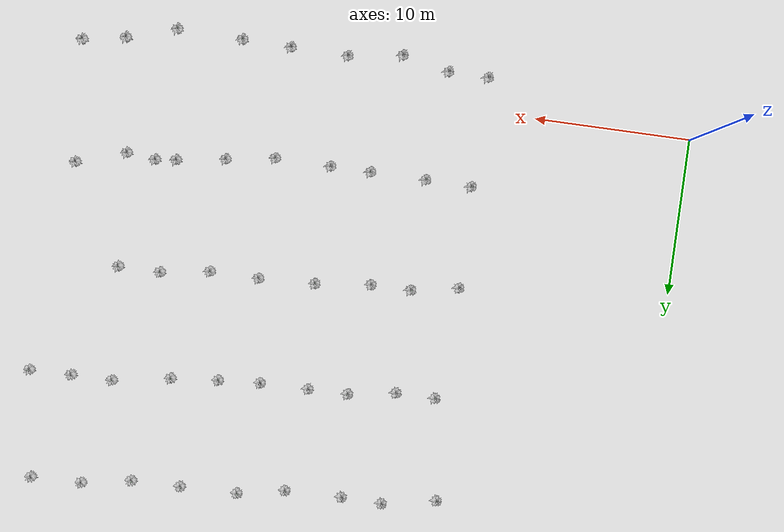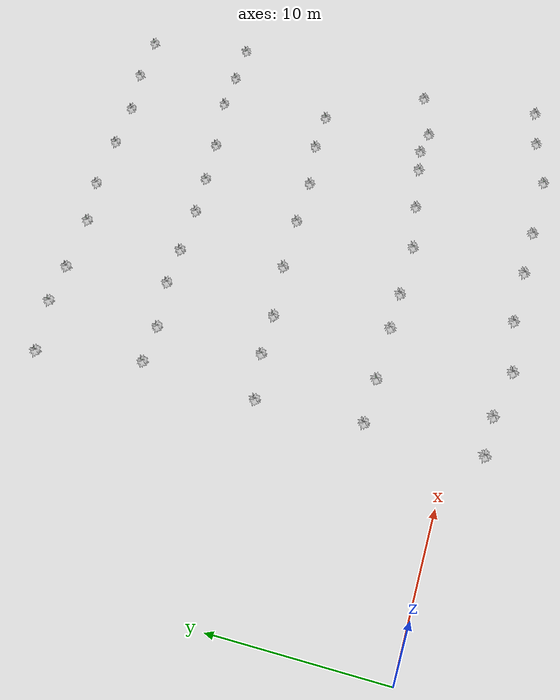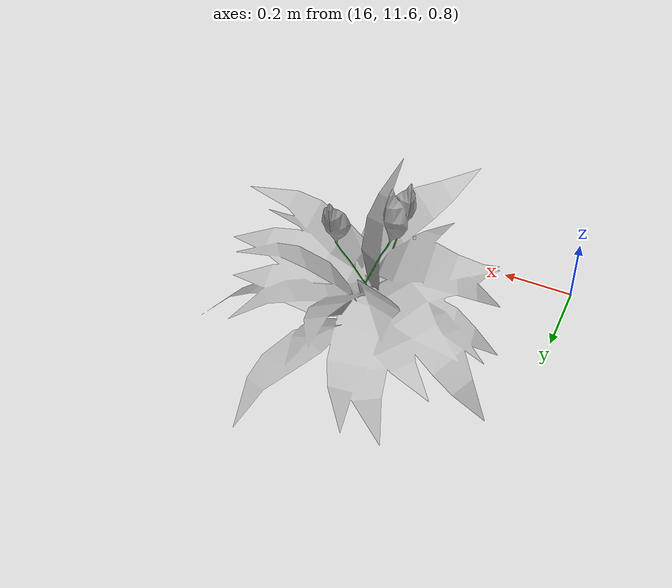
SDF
<sdf version="1.3">
 <world name="default">
  <scene>
   <grid>0</grid>
   <shadows>1</shadows>
   <ambient>0.200000 0.200000 0.200000 1.000000</ambient>
   <background>0.900000 0.900000 0.900000 1.000000</background>
  </scene>
  <light name="sun" type="directional">
   <pose>0.000000 0.000000 10.000000 0.000000 0.000000 0.000000</pose>
   <diffuse>0.800000 0.800000 0.800000 1.000000</diffuse>
   <specular>0.100000 0.100000 0.100000 1.000000</specular>
   <attenuation>
    <range>1000.000000</range>
    <constant>0.900000</constant>
    <linear>0.010000</linear>
    <quadratic>0.001000</quadratic>
   </attenuation>
   <direction>-0.500000 0.500000 -1.000000</direction>
  </light>
  <physics type="ode">
   <update_rate>1000.000000</update_rate>
   <gravity>0.000000 0.000000 -9.800000</gravity>
  </physics>
  <model name="Spathaphylum">
   <pose>38 26.4824 2.69953 0 -0 0</pose>
   <static>1</static>
   <link name="link">
    <inertial>
     <mass>10</mass>
     <inertia><ixx>1</ixx><ixy>0</ixy><ixz>0</ixz><iyy>1</iyy><iyz>0</iyz><izz>1</izz></inertia>
    </inertial>
    <visual name="visual">
     <geometry><mesh><uri>model://spathaphylum/meshes/Spathaphylum.dae</uri></mesh></geometry>
    </visual>
    <velocity_decay><linear>0</linear><angular>0</angular></velocity_decay>
   </link>
  </model>
  <model name="Spathaphylum_0">
   <pose>35 26.4967 2.37261 0 -0 0</pose>
   <static>1</static>
   <link name="link">
    <inertial>
     <mass>10</mass>
     <inertia><ixx>1</ixx><ixy>0</ixy><ixz>0</ixz><iyy>1</iyy><iyz>0</iyz><izz>1</izz></inertia>
    </inertial>
    <visual name="visual">
     <geometry><mesh><uri>model://spathaphylum/meshes/Spathaphylum.dae</uri></mesh></geometry>
    </visual>
    <velocity_decay><linear>0</linear><angular>0</angular></velocity_decay>
   </link>
  </model>
  <model name="Spathaphylum_1">
   <pose>32 26 2.17713 0 -0 0</pose>
   <static>1</static>
   <link name="link">
    <inertial>
     <mass>10</mass>
     <inertia><ixx>1</ixx><ixy>0</ixy><ixz>0</ixz><iyy>1</iyy><iyz>0</iyz><izz>1</izz></inertia>
    </inertial>
    <visual name="visual">
     <geometry><mesh><uri>model://spathaphylum/meshes/Spathaphylum.dae</uri></mesh></geometry>
    </visual>
    <velocity_decay><linear>0</linear><angular>0</angular></velocity_decay>
   </link>
  </model>
  <model name="Spathaphylum_2">
   <pose>29 26 1.9598 0 -0 0</pose>
   <static>1</static>
   <link name="link">
    <inertial>
     <mass>10</mass>
     <inertia><ixx>1</ixx><ixy>0</ixy><ixz>0</ixz><iyy>1</iyy><iyz>0</iyz><izz>1</izz></inertia>
    </inertial>
    <visual name="visual">
     <geometry><mesh><uri>model://spathaphylum/meshes/Spathaphylum.dae</uri></mesh></geometry>
    </visual>
    <velocity_decay><linear>0</linear><angular>0</angular></velocity_decay>
   </link>
  </model>
  <model name="Spathaphylum_3">
   <pose>25.4868 26 1.70026 0 -0 0</pose>
   <static>1</static>
   <link name="link">
    <inertial>
     <mass>10</mass>
     <inertia><ixx>1</ixx><ixy>0</ixy><ixz>0</ixz><iyy>1</iyy><iyz>0</iyz><izz>1</izz></inertia>
    </inertial>
    <visual name="visual">
     <geometry><mesh><uri>model://spathaphylum/meshes/Spathaphylum.dae</uri></mesh></geometry>
    </visual>
    <velocity_decay><linear>0</linear><angular>0</angular></velocity_decay>
   </link>
  </model>
  <model name="Spathaphylum_4">
   <pose>22.5566 25.4676 1.50789 0 -0 0</pose>
   <static>1</static>
   <link name="link">
    <inertial>
     <mass>10</mass>
     <inertia><ixx>1</ixx><ixy>0</ixy><ixz>0</ixz><iyy>1</iyy><iyz>0</iyz><izz>1</izz></inertia>
    </inertial>
    <visual name="visual">
     <geometry><mesh><uri>model://spathaphylum/meshes/Spathaphylum.dae</uri></mesh></geometry>
    </visual>
    <velocity_decay><linear>0</linear><angular>0</angular></velocity_decay>
   </link>
  </model>
  <model name="Spathaphylum_5">
   <pose>19 25.484 1.163 0 -0 0</pose>
   <static>1</static>
   <link name="link">
    <inertial>
     <mass>10</mass>
     <inertia><ixx>1</ixx><ixy>0</ixy><ixz>0</ixz><iyy>1</iyy><iyz>0</iyz><izz>1</izz></inertia>
    </inertial>
    <visual name="visual">
     <geometry><mesh><uri>model://spathaphylum/meshes/Spathaphylum.dae</uri></mesh></geometry>
    </visual>
    <velocity_decay><linear>0</linear><angular>0</angular></velocity_decay>
   </link>
  </model>
  <model name="Spathaphylum_6">
   <pose>16.4478 25.5812 0.930925 0 -0 0</pose>
   <static>1</static>
   <link name="link">
    <inertial>
     <mass>10</mass>
     <inertia><ixx>1</ixx><ixy>0</ixy><ixz>0</ixz><iyy>1</iyy><iyz>0</iyz><izz>1</izz></inertia>
    </inertial>
    <visual name="visual">
     <geometry><mesh><uri>model://spathaphylum/meshes/Spathaphylum.dae</uri></mesh></geometry>
    </visual>
    <velocity_decay><linear>0</linear><angular>0</angular></velocity_decay>
   </link>
  </model>
  <model name="Spathaphylum_7">
   <pose>13 25 0.691737 0 -0 0</pose>
   <static>1</static>
   <link name="link">
    <inertial>
     <mass>10</mass>
     <inertia><ixx>1</ixx><ixy>0</ixy><ixz>0</ixz><iyy>1</iyy><iyz>0</iyz><izz>1</izz></inertia>
    </inertial>
    <visual name="visual">
     <geometry><mesh><uri>model://spathaphylum/meshes/Spathaphylum.dae</uri></mesh></geometry>
    </visual>
    <velocity_decay><linear>0</linear><angular>0</angular></velocity_decay>
   </link>
  </model>
  <model name="Spathaphylum_8">
   <pose>14 18.5646 0.780323 0 -0 0</pose>
   <static>1</static>
   <link name="link">
    <inertial>
     <mass>10</mass>
     <inertia><ixx>1</ixx><ixy>0</ixy><ixz>0</ixz><iyy>1</iyy><iyz>0</iyz><izz>1</izz></inertia>
    </inertial>
    <visual name="visual">
     <geometry><mesh><uri>model://spathaphylum/meshes/Spathaphylum.dae</uri></mesh></geometry>
    </visual>
    <velocity_decay><linear>0</linear><angular>0</angular></velocity_decay>
   </link>
  </model>
  <model name="Spathaphylum_9">
   <pose>16.4951 18.5506 0.896067 0 -0 0</pose>
   <static>1</static>
   <link name="link">
    <inertial>
     <mass>10</mass>
     <inertia><ixx>1</ixx><ixy>0</ixy><ixz>0</ixz><iyy>1</iyy><iyz>0</iyz><izz>1</izz></inertia>
    </inertial>
    <visual name="visual">
     <geometry><mesh><uri>model://spathaphylum/meshes/Spathaphylum.dae</uri></mesh></geometry>
    </visual>
    <velocity_decay><linear>0</linear><angular>0</angular></velocity_decay>
   </link>
  </model>
  <model name="Spathaphylum_10">
   <pose>19.5087 19 1.23942 0 -0 0</pose>
   <static>1</static>
   <link name="link">
    <inertial>
     <mass>10</mass>
     <inertia><ixx>1</ixx><ixy>0</ixy><ixz>0</ixz><iyy>1</iyy><iyz>0</iyz><izz>1</izz></inertia>
    </inertial>
    <visual name="visual">
     <geometry><mesh><uri>model://spathaphylum/meshes/Spathaphylum.dae</uri></mesh></geometry>
    </visual>
    <velocity_decay><linear>0</linear><angular>0</angular></velocity_decay>
   </link>
  </model>
  <model name="Spathaphylum_11">
   <pose>22 19 1.42672 0 -0 0</pose>
   <static>1</static>
   <link name="link">
    <inertial>
     <mass>10</mass>
     <inertia><ixx>1</ixx><ixy>0</ixy><ixz>0</ixz><iyy>1</iyy><iyz>0</iyz><izz>1</izz></inertia>
    </inertial>
    <visual name="visual">
     <geometry><mesh><uri>model://spathaphylum/meshes/Spathaphylum.dae</uri></mesh></geometry>
    </visual>
    <velocity_decay><linear>0</linear><angular>0</angular></velocity_decay>
   </link>
  </model>
  <model name="Spathaphylum_12">
   <pose>25 19 1.72219 0 -0 0</pose>
   <static>1</static>
   <link name="link">
    <inertial>
     <mass>10</mass>
     <inertia><ixx>1</ixx><ixy>0</ixy><ixz>0</ixz><iyy>1</iyy><iyz>0</iyz><izz>1</izz></inertia>
    </inertial>
    <visual name="visual">
     <geometry><mesh><uri>model://spathaphylum/meshes/Spathaphylum.dae</uri></mesh></geometry>
    </visual>
    <velocity_decay><linear>0</linear><angular>0</angular></velocity_decay>
   </link>
  </model>
  <model name="Spathaphylum_13">
   <pose>27.5803 19.1679 1.94251 0 -0 0</pose>
   <static>1</static>
   <link name="link">
    <inertial>
     <mass>10</mass>
     <inertia><ixx>1</ixx><ixy>0</ixy><ixz>0</ixz><iyy>1</iyy><iyz>0</iyz><izz>1</izz></inertia>
    </inertial>
    <visual name="visual">
     <geometry><mesh><uri>model://spathaphylum/meshes/Spathaphylum.dae</uri></mesh></geometry>
    </visual>
    <velocity_decay><linear>0</linear><angular>0</angular></velocity_decay>
   </link>
  </model>
  <model name="Spathaphylum_14">
   <pose>30.4794 19.4287 2.0789 0 -0 0</pose>
   <static>1</static>
   <link name="link">
    <inertial>
     <mass>10</mass>
     <inertia><ixx>1</ixx><ixy>0</ixy><ixz>0</ixz><iyy>1</iyy><iyz>0</iyz><izz>1</izz></inertia>
    </inertial>
    <visual name="visual">
     <geometry><mesh><uri>model://spathaphylum/meshes/Spathaphylum.dae</uri></mesh></geometry>
    </visual>
    <velocity_decay><linear>0</linear><angular>0</angular></velocity_decay>
   </link>
  </model>
  <model name="Spathaphylum_15">
   <pose>34 20 2.3524 0 -0 0</pose>
   <static>1</static>
   <link name="link">
    <inertial>
     <mass>10</mass>
     <inertia><ixx>1</ixx><ixy>0</ixy><ixz>0</ixz><iyy>1</iyy><iyz>0</iyz><izz>1</izz></inertia>
    </inertial>
    <visual name="visual">
     <geometry><mesh><uri>model://spathaphylum/meshes/Spathaphylum.dae</uri></mesh></geometry>
    </visual>
    <velocity_decay><linear>0</linear><angular>0</angular></velocity_decay>
   </link>
  </model>
  <model name="Spathaphylum_16">
   <pose>36.508 20 2.42581 0 -0 0</pose>
   <static>1</static>
   <link name="link">
    <inertial>
     <mass>10</mass>
     <inertia><ixx>1</ixx><ixy>0</ixy><ixz>0</ixz><iyy>1</iyy><iyz>0</iyz><izz>1</izz></inertia>
    </inertial>
    <visual name="visual">
     <geometry><mesh><uri>model://spathaphylum/meshes/Spathaphylum.dae</uri></mesh></geometry>
    </visual>
    <velocity_decay><linear>0</linear><angular>0</angular></velocity_decay>
   </link>
  </model>
  <model name="Spathaphylum_17">
   <pose>39 20 2.69252 0 -0 0</pose>
   <static>1</static>
   <link name="link">
    <inertial>
     <mass>10</mass>
     <inertia><ixx>1</ixx><ixy>0</ixy><ixz>0</ixz><iyy>1</iyy><iyz>0</iyz><izz>1</izz></inertia>
    </inertial>
    <visual name="visual">
     <geometry><mesh><uri>model://spathaphylum/meshes/Spathaphylum.dae</uri></mesh></geometry>
    </visual>
    <velocity_decay><linear>0</linear><angular>0</angular></velocity_decay>
   </link>
  </model>
  <model name="Spathaphylum_18">
   <pose>33.1829 6.18657 2.59269 0 -0 0</pose>
   <static>1</static>
   <link name="link">
    <inertial>
     <mass>10</mass>
     <inertia><ixx>1</ixx><ixy>0</ixy><ixz>0</ixz><iyy>1</iyy><iyz>0</iyz><izz>1</izz></inertia>
    </inertial>
    <visual name="visual">
     <geometry><mesh><uri>model://spathaphylum/meshes/Spathaphylum.dae</uri></mesh></geometry>
    </visual>
    <velocity_decay><linear>0</linear><angular>0</angular></velocity_decay>
   </link>
  </model>
  <model name="Spathaphylum_19">
   <pose>34.5484 12.9884 2.4536 0 -0 0</pose>
   <static>1</static>
   <link name="link">
    <inertial>
     <mass>10</mass>
     <inertia><ixx>1</ixx><ixy>0</ixy><ixz>0</ixz><iyy>1</iyy><iyz>0</iyz><izz>1</izz></inertia>
    </inertial>
    <visual name="visual">
     <geometry><mesh><uri>model://spathaphylum/meshes/Spathaphylum.dae</uri></mesh></geometry>
    </visual>
    <velocity_decay><linear>0</linear><angular>0</angular></velocity_decay>
   </link>
  </model>
  <model name="Spathaphylum_20">
   <pose>32 13 2.25553 0 -0 0</pose>
   <static>1</static>
   <link name="link">
    <inertial>
     <mass>10</mass>
     <inertia><ixx>1</ixx><ixy>0</ixy><ixz>0</ixz><iyy>1</iyy><iyz>0</iyz><izz>1</izz></inertia>
    </inertial>
    <visual name="visual">
     <geometry><mesh><uri>model://spathaphylum/meshes/Spathaphylum.dae</uri></mesh></geometry>
    </visual>
    <velocity_decay><linear>0</linear><angular>0</angular></velocity_decay>
   </link>
  </model>
  <model name="Spathaphylum_21">
   <pose>29 12.5448 2.00728 0 -0 0</pose>
   <static>1</static>
   <link name="link">
    <inertial>
     <mass>10</mass>
     <inertia><ixx>1</ixx><ixy>0</ixy><ixz>0</ixz><iyy>1</iyy><iyz>0</iyz><izz>1</izz></inertia>
    </inertial>
    <visual name="visual">
     <geometry><mesh><uri>model://spathaphylum/meshes/Spathaphylum.dae</uri></mesh></geometry>
    </visual>
    <velocity_decay><linear>0</linear><angular>0</angular></velocity_decay>
   </link>
  </model>
  <model name="Spathaphylum_22">
   <pose>26 12.5617 1.72037 0 -0 0</pose>
   <static>1</static>
   <link name="link">
    <inertial>
     <mass>10</mass>
     <inertia><ixx>1</ixx><ixy>0</ixy><ixz>0</ixz><iyy>1</iyy><iyz>0</iyz><izz>1</izz></inertia>
    </inertial>
    <visual name="visual">
     <geometry><mesh><uri>model://spathaphylum/meshes/Spathaphylum.dae</uri></mesh></geometry>
    </visual>
    <velocity_decay><linear>0</linear><angular>0</angular></velocity_decay>
   </link>
  </model>
  <model name="Spathaphylum_23">
   <pose>22.4889 12.4105 1.46787 0 -0 0</pose>
   <static>1</static>
   <link name="link">
    <inertial>
     <mass>10</mass>
     <inertia><ixx>1</ixx><ixy>0</ixy><ixz>0</ixz><iyy>1</iyy><iyz>0</iyz><izz>1</izz></inertia>
    </inertial>
    <visual name="visual">
     <geometry><mesh><uri>model://spathaphylum/meshes/Spathaphylum.dae</uri></mesh></geometry>
    </visual>
    <velocity_decay><linear>0</linear><angular>0</angular></velocity_decay>
   </link>
  </model>
  <model name="Spathaphylum_24">
   <pose>19 12 1.17317 0 -0 0</pose>
   <static>1</static>
   <link name="link">
    <inertial>
     <mass>10</mass>
     <inertia><ixx>1</ixx><ixy>0</ixy><ixz>0</ixz><iyy>1</iyy><iyz>0</iyz><izz>1</izz></inertia>
    </inertial>
    <visual name="visual">
     <geometry><mesh><uri>model://spathaphylum/meshes/Spathaphylum.dae</uri></mesh></geometry>
    </visual>
    <velocity_decay><linear>0</linear><angular>0</angular></velocity_decay>
   </link>
  </model>
  <model name="Spathaphylum_25">
   <pose>16.4604 12 0.761774 0 -0 0</pose>
   <static>1</static>
   <link name="link">
    <inertial>
     <mass>10</mass>
     <inertia><ixx>1</ixx><ixy>0</ixy><ixz>0</ixz><iyy>1</iyy><iyz>0</iyz><izz>1</izz></inertia>
    </inertial>
    <visual name="visual">
     <geometry><mesh><uri>model://spathaphylum/meshes/Spathaphylum.dae</uri></mesh></geometry>
    </visual>
    <velocity_decay><linear>0</linear><angular>0</angular></velocity_decay>
   </link>
  </model>
  <model name="Spathaphylum_26">
   <pose>13.4453 11.4523 0.622094 0 -0 0</pose>
   <static>1</static>
   <link name="link">
    <inertial>
     <mass>10</mass>
     <inertia><ixx>1</ixx><ixy>0</ixy><ixz>0</ixz><iyy>1</iyy><iyz>0</iyz><izz>1</izz></inertia>
    </inertial>
    <visual name="visual">
     <geometry><mesh><uri>model://spathaphylum/meshes/Spathaphylum.dae</uri></mesh></geometry>
    </visual>
    <velocity_decay><linear>0</linear><angular>0</angular></velocity_decay>
   </link>
  </model>
  <model name="Spathaphylum_27">
   <pose>13.5801 5 0.833453 0 -0 0</pose>
   <static>1</static>
   <link name="link">
    <inertial>
     <mass>10</mass>
     <inertia><ixx>1</ixx><ixy>0</ixy><ixz>0</ixz><iyy>1</iyy><iyz>0</iyz><izz>1</izz></inertia>
    </inertial>
    <visual name="visual">
     <geometry><mesh><uri>model://spathaphylum/meshes/Spathaphylum.dae</uri></mesh></geometry>
    </visual>
    <velocity_decay><linear>0</linear><angular>0</angular></velocity_decay>
   </link>
  </model>
  <model name="Spathaphylum_28">
   <pose>16.5009 4.98615 1.02049 0 -0 0</pose>
   <static>1</static>
   <link name="link">
    <inertial>
     <mass>10</mass>
     <inertia><ixx>1</ixx><ixy>0</ixy><ixz>0</ixz><iyy>1</iyy><iyz>0</iyz><izz>1</izz></inertia>
    </inertial>
    <visual name="visual">
     <geometry><mesh><uri>model://spathaphylum/meshes/Spathaphylum.dae</uri></mesh></geometry>
    </visual>
    <velocity_decay><linear>0</linear><angular>0</angular></velocity_decay>
   </link>
  </model>
  <model name="Spathaphylum_29">
   <pose>20 5 1.28919 0 -0 0</pose>
   <static>1</static>
   <link name="link">
    <inertial>
     <mass>10</mass>
     <inertia><ixx>1</ixx><ixy>0</ixy><ixz>0</ixz><iyy>1</iyy><iyz>0</iyz><izz>1</izz></inertia>
    </inertial>
    <visual name="visual">
     <geometry><mesh><uri>model://spathaphylum/meshes/Spathaphylum.dae</uri></mesh></geometry>
    </visual>
    <velocity_decay><linear>0</linear><angular>0</angular></velocity_decay>
   </link>
  </model>
  <model name="Spathaphylum_30">
   <pose>22.5362 5 1.38196 0 -0 0</pose>
   <static>1</static>
   <link name="link">
    <inertial>
     <mass>10</mass>
     <inertia><ixx>1</ixx><ixy>0</ixy><ixz>0</ixz><iyy>1</iyy><iyz>0</iyz><izz>1</izz></inertia>
    </inertial>
    <visual name="visual">
     <geometry><mesh><uri>model://spathaphylum/meshes/Spathaphylum.dae</uri></mesh></geometry>
    </visual>
    <velocity_decay><linear>0</linear><angular>0</angular></velocity_decay>
   </link>
  </model>
  <model name="Spathaphylum_31">
   <pose>26 5 1.70534 0 -0 0</pose>
   <static>1</static>
   <link name="link">
    <inertial>
     <mass>10</mass>
     <inertia><ixx>1</ixx><ixy>0</ixy><ixz>0</ixz><iyy>1</iyy><iyz>0</iyz><izz>1</izz></inertia>
    </inertial>
    <visual name="visual">
     <geometry><mesh><uri>model://spathaphylum/meshes/Spathaphylum.dae</uri></mesh></geometry>
    </visual>
    <velocity_decay><linear>0</linear><angular>0</angular></velocity_decay>
   </link>
  </model>
  <model name="Spathaphylum_32">
   <pose>29 5.5143 1.98639 0 -0 0</pose>
   <static>1</static>
   <link name="link">
    <inertial>
     <mass>10</mass>
     <inertia><ixx>1</ixx><ixy>0</ixy><ixz>0</ixz><iyy>1</iyy><iyz>0</iyz><izz>1</izz></inertia>
    </inertial>
    <visual name="visual">
     <geometry><mesh><uri>model://spathaphylum/meshes/Spathaphylum.dae</uri></mesh></geometry>
    </visual>
    <velocity_decay><linear>0</linear><angular>0</angular></velocity_decay>
   </link>
  </model>
  <model name="Spathaphylum_33">
   <pose>32 6 2.1543 0 -0 0</pose>
   <static>1</static>
   <link name="link">
    <inertial>
     <mass>10</mass>
     <inertia><ixx>1</ixx><ixy>0</ixy><ixz>0</ixz><iyy>1</iyy><iyz>0</iyz><izz>1</izz></inertia>
    </inertial>
    <visual name="visual">
     <geometry><mesh><uri>model://spathaphylum/meshes/Spathaphylum.dae</uri></mesh></geometry>
    </visual>
    <velocity_decay><linear>0</linear><angular>0</angular></velocity_decay>
   </link>
  </model>
  <model name="Spathaphylum_34">
   <pose>35 6 2.42114 0 -0 0</pose>
   <static>1</static>
   <link name="link">
    <inertial>
     <mass>10</mass>
     <inertia><ixx>1</ixx><ixy>0</ixy><ixz>0</ixz><iyy>1</iyy><iyz>0</iyz><izz>1</izz></inertia>
    </inertial>
    <visual name="visual">
     <geometry><mesh><uri>model://spathaphylum/meshes/Spathaphylum.dae</uri></mesh></geometry>
    </visual>
    <velocity_decay><linear>0</linear><angular>0</angular></velocity_decay>
   </link>
  </model>
  <model name="Spathaphylum_35">
   <pose>38 7 2.61822 0 -0 0</pose>
   <static>1</static>
   <link name="link">
    <inertial>
     <mass>10</mass>
     <inertia><ixx>1</ixx><ixy>0</ixy><ixz>0</ixz><iyy>1</iyy><iyz>0</iyz><izz>1</izz></inertia>
    </inertial>
    <visual name="visual">
     <geometry><mesh><uri>model://spathaphylum/meshes/Spathaphylum.dae</uri></mesh></geometry>
    </visual>
    <velocity_decay><linear>0</linear><angular>0</angular></velocity_decay>
   </link>
  </model>
  <model name="Spathaphylum_36">
   <pose>38.5795 -0.480361 2.71659 0 -0 0</pose>
   <static>1</static>
   <link name="link">
    <inertial>
     <mass>10</mass>
     <inertia><ixx>1</ixx><ixy>0</ixy><ixz>0</ixz><iyy>1</iyy><iyz>0</iyz><izz>1</izz></inertia>
    </inertial>
    <visual name="visual">
     <geometry><mesh><uri>model://spathaphylum/meshes/Spathaphylum.dae</uri></mesh></geometry>
    </visual>
    <velocity_decay><linear>0</linear><angular>0</angular></velocity_decay>
   </link>
  </model>
  <model name="Spathaphylum_37">
   <pose>36 -1 2.55977 0 -0 0</pose>
   <static>1</static>
   <link name="link">
    <inertial>
     <mass>10</mass>
     <inertia><ixx>1</ixx><ixy>0</ixy><ixz>0</ixz><iyy>1</iyy><iyz>0</iyz><izz>1</izz></inertia>
    </inertial>
    <visual name="visual">
     <geometry><mesh><uri>model://spathaphylum/meshes/Spathaphylum.dae</uri></mesh></geometry>
    </visual>
    <velocity_decay><linear>0</linear><angular>0</angular></velocity_decay>
   </link>
  </model>
  <model name="Spathaphylum_38">
   <pose>33 -2 2.27954 0 -0 0</pose>
   <static>1</static>
   <link name="link">
    <inertial>
     <mass>10</mass>
     <inertia><ixx>1</ixx><ixy>0</ixy><ixz>0</ixz><iyy>1</iyy><iyz>0</iyz><izz>1</izz></inertia>
    </inertial>
    <visual name="visual">
     <geometry><mesh><uri>model://spathaphylum/meshes/Spathaphylum.dae</uri></mesh></geometry>
    </visual>
    <velocity_decay><linear>0</linear><angular>0</angular></velocity_decay>
   </link>
  </model>
  <model name="Spathaphylum_39">
   <pose>29 -2 1.90566 0 -0 0</pose>
   <static>1</static>
   <link name="link">
    <inertial>
     <mass>10</mass>
     <inertia><ixx>1</ixx><ixy>0</ixy><ixz>0</ixz><iyy>1</iyy><iyz>0</iyz><izz>1</izz></inertia>
    </inertial>
    <visual name="visual">
     <geometry><mesh><uri>model://spathaphylum/meshes/Spathaphylum.dae</uri></mesh></geometry>
    </visual>
    <velocity_decay><linear>0</linear><angular>0</angular></velocity_decay>
   </link>
  </model>
  <model name="Spathaphylum_40">
   <pose>26 -2 1.62447 0 -0 0</pose>
   <static>1</static>
   <link name="link">
    <inertial>
     <mass>10</mass>
     <inertia><ixx>1</ixx><ixy>0</ixy><ixz>0</ixz><iyy>1</iyy><iyz>0</iyz><izz>1</izz></inertia>
    </inertial>
    <visual name="visual">
     <geometry><mesh><uri>model://spathaphylum/meshes/Spathaphylum.dae</uri></mesh></geometry>
    </visual>
    <velocity_decay><linear>0</linear><angular>0</angular></velocity_decay>
   </link>
  </model>
  <model name="Spathaphylum_41">
   <pose>22.4152 -2 1.41971 0 -0 0</pose>
   <static>1</static>
   <link name="link">
    <inertial>
     <mass>10</mass>
     <inertia><ixx>1</ixx><ixy>0</ixy><ixz>0</ixz><iyy>1</iyy><iyz>0</iyz><izz>1</izz></inertia>
    </inertial>
    <visual name="visual">
     <geometry><mesh><uri>model://spathaphylum/meshes/Spathaphylum.dae</uri></mesh></geometry>
    </visual>
    <velocity_decay><linear>0</linear><angular>0</angular></velocity_decay>
   </link>
  </model>
  <model name="Spathaphylum_42">
   <pose>19 -2.55344 1.21241 0 -0 0</pose>
   <static>1</static>
   <link name="link">
    <inertial>
     <mass>10</mass>
     <inertia><ixx>1</ixx><ixy>0</ixy><ixz>0</ixz><iyy>1</iyy><iyz>0</iyz><izz>1</izz></inertia>
    </inertial>
    <visual name="visual">
     <geometry><mesh><uri>model://spathaphylum/meshes/Spathaphylum.dae</uri></mesh></geometry>
    </visual>
    <velocity_decay><linear>0</linear><angular>0</angular></velocity_decay>
   </link>
  </model>
  <model name="Spathaphylum_43">
   <pose>16 -2 0.861484 0 -0 0</pose>
   <static>1</static>
   <link name="link">
    <inertial>
     <mass>10</mass>
     <inertia><ixx>1</ixx><ixy>0</ixy><ixz>0</ixz><iyy>1</iyy><iyz>0</iyz><izz>1</izz></inertia>
    </inertial>
    <visual name="visual">
     <geometry><mesh><uri>model://spathaphylum/meshes/Spathaphylum.dae</uri></mesh></geometry>
    </visual>
    <velocity_decay><linear>0</linear><angular>0</angular></velocity_decay>
   </link>
  </model>
  <model name="Spathaphylum_44">
   <pose>13.4591 -2 0.755495 0 -0 0</pose>
   <static>1</static>
   <link name="link">
    <inertial>
     <mass>10</mass>
     <inertia><ixx>1</ixx><ixy>0</ixy><ixz>0</ixz><iyy>1</iyy><iyz>0</iyz><izz>1</izz></inertia>
    </inertial>
    <visual name="visual">
     <geometry><mesh><uri>model://spathaphylum/meshes/Spathaphylum.dae</uri></mesh></geometry>
    </visual>
    <velocity_decay><linear>0</linear><angular>0</angular></velocity_decay>
   </link>
  </model>
 </world>
</sdf>
